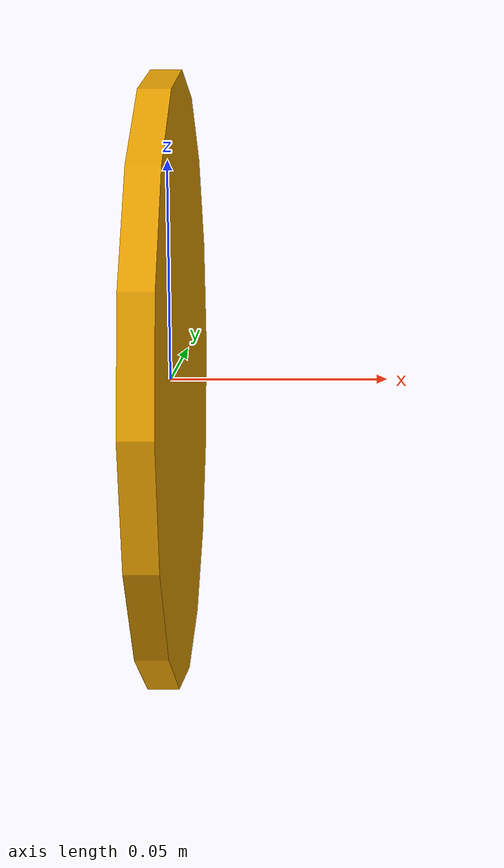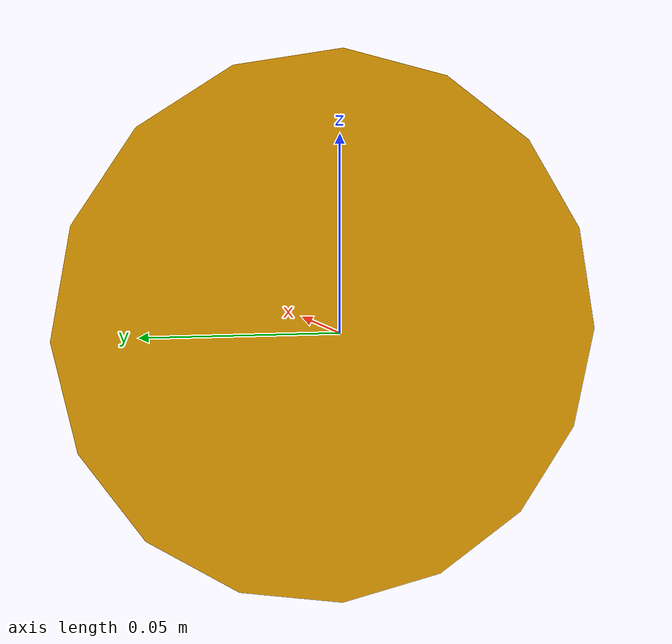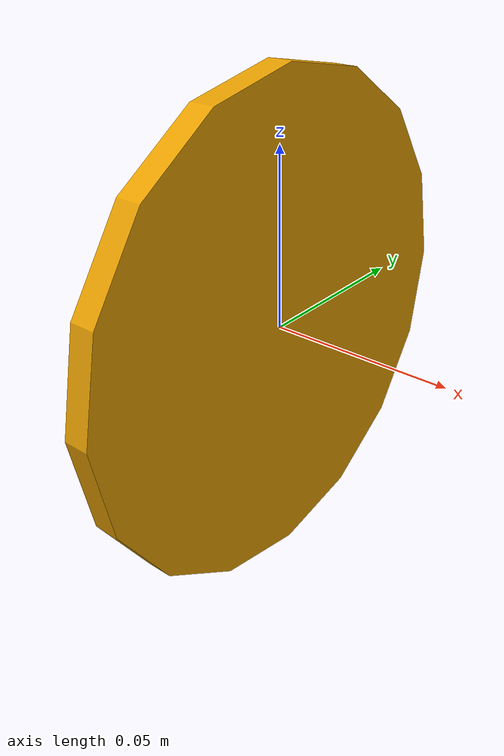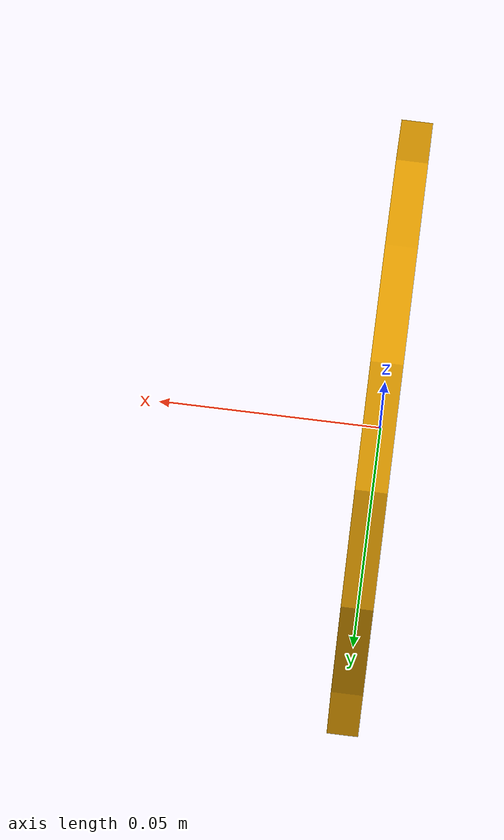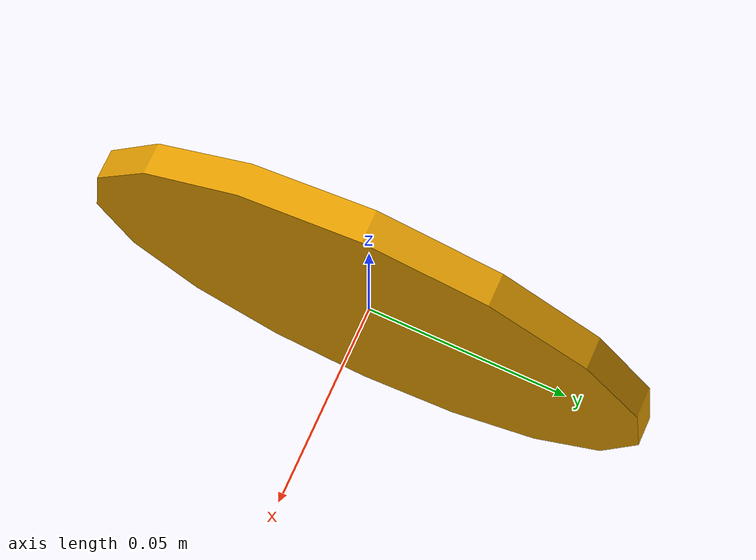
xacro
<?xml version="1.0"?>
<robot xmlns:xacro="http://www.ros.org/wiki/xacro" name="circle">
    <xacro:property name="height" value="0.14"/>
    <xacro:property name="mesh_scale" value="${height / 2}"/>
    <xacro:property name="x" value="${0.05 * height}"/>
    <xacro:property name="y" value="${1.0 * height}"/>
    <xacro:property name="z" value="${1.0 * height}"/>
    <xacro:property name="mass" value="1.0"/>
    <link name="base_link">
        <visual>
            <geometry>
                <mesh filename="circle.obj" scale="${mesh_scale} ${mesh_scale} ${mesh_scale}"/>
            </geometry>
        </visual>
        <collision>
            <geometry>
                <box size="${x} ${y} ${z}"/>
            </geometry>
        </collision>
        <inertial>
            <mass value="${mass}"/>
            <inertia ixx="${mass * (z**2 + y**2) / 12}" ixy="0.0" ixz="0.0"
                     iyy="${mass * (z**2 + x**2) / 12}" iyz="0.0"
                     izz="${mass * (x**2 + y**2) / 12}"/>
        </inertial>
    </link>
</robot>
